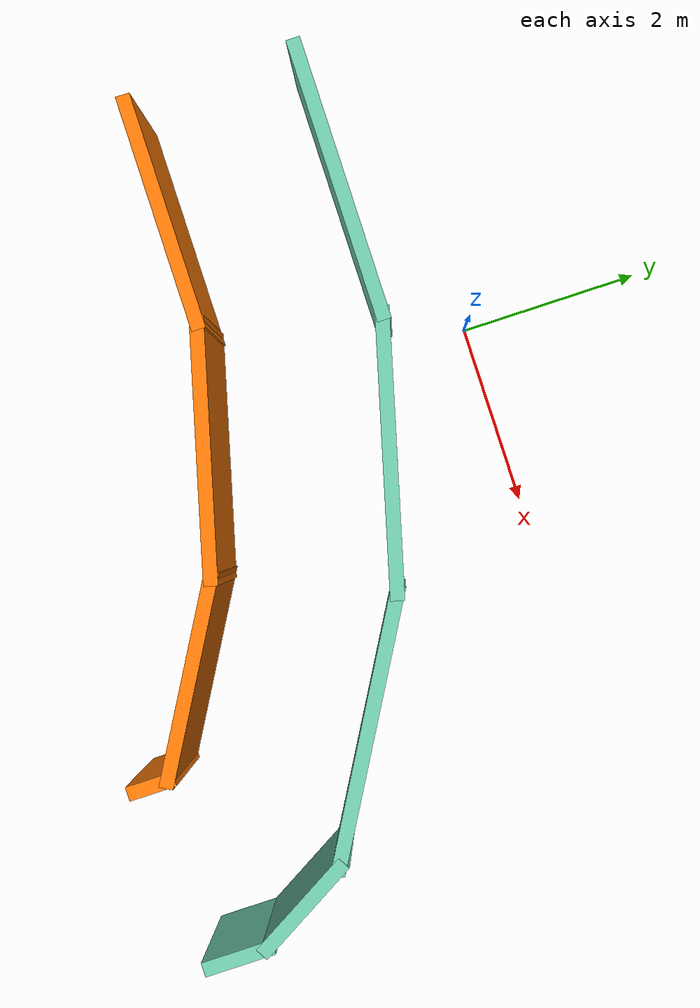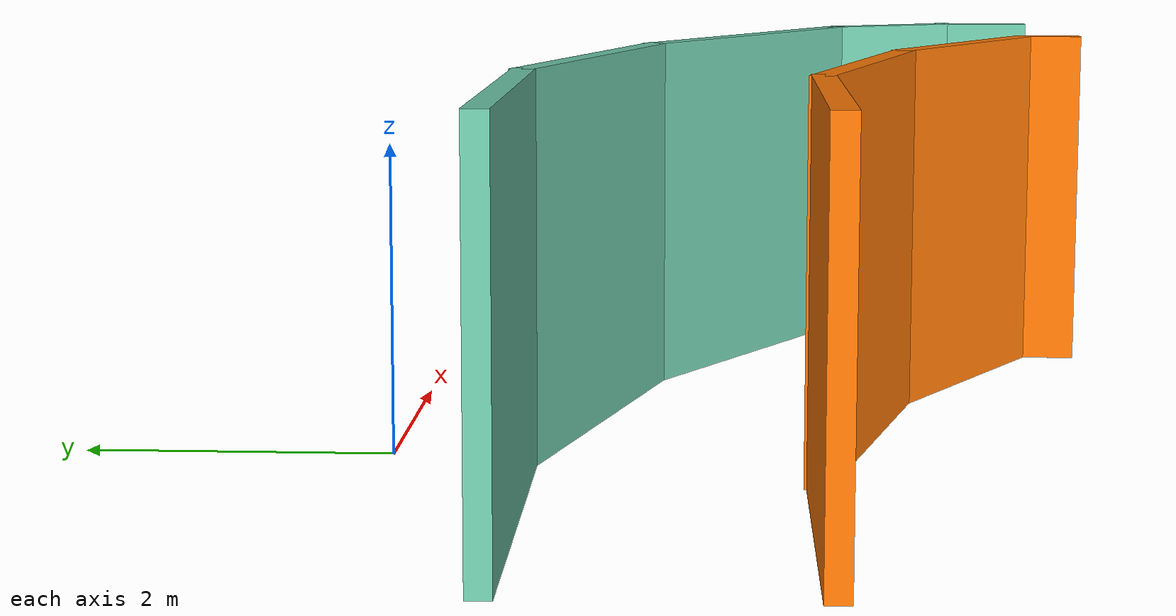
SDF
<?xml version='1.0'?>
<sdf version='1.7'>
  <model name='BigTurnP'>
    <pose>1.21426 -2.41897 0 0 -0 0</pose>
    <link name='Wall_0'>
      <collision name='Wall_0_Collision'>
        <geometry>
          <box>
            <size>3 0.15 2.5</size>
          </box>
        </geometry>
        <pose>0 0 1.25 0 -0 0</pose>
      </collision>
      <visual name='Wall_0_Visual'>
        <pose>0 0 1.25 0 -0 0</pose>
        <geometry>
          <box>
            <size>3 0.15 2.5</size>
          </box>
        </geometry>
        <material>
          <script>
            <uri>file://media/materials/scripts/gazebo.material</uri>
            <name>Gazebo/Grey</name>
          </script>
          <ambient>0.435294 0.796078 0.67451 1</ambient>
        </material>
        <meta>
          <layer>0</layer>
        </meta>
      </visual>
      <pose>-2.89926 1.54896 0 0 -0 0</pose>
    </link>
    <link name='Wall_1'>
      <collision name='Wall_1_Collision'>
        <geometry>
          <box>
            <size>3 0.15 2.5</size>
          </box>
        </geometry>
        <pose>0 0 1.25 0 -0 0</pose>
      </collision>
      <visual name='Wall_1_Visual'>
        <pose>0 0 1.25 0 -0 0</pose>
        <geometry>
          <box>
            <size>3 0.15 2.5</size>
          </box>
        </geometry>
        <material>
          <script>
            <uri>file://media/materials/scripts/gazebo.material</uri>
            <name>Gazebo/Grey</name>
          </script>
          <ambient>0.435294 0.796078 0.67451 1</ambient>
        </material>
        <meta>
          <layer>0</layer>
        </meta>
      </visual>
      <pose>-0.097812 1.18015 0 0 -0 -0.261799</pose>
    </link>
    <link name='Wall_10'>
      <collision name='Wall_10_Collision'>
        <geometry>
          <box>
            <size>1.25 0.15 2.5</size>
          </box>
        </geometry>
        <pose>0 0 1.25 0 -0 0</pose>
      </collision>
      <visual name='Wall_10_Visual'>
        <pose>0 0 1.25 0 -0 0</pose>
        <geometry>
          <box>
            <size>1.25 0.15 2.5</size>
          </box>
        </geometry>
        <material>
          <script>
            <uri>file://media/materials/scripts/gazebo.material</uri>
            <name>Gazebo/Grey</name>
          </script>
          <ambient>0.435294 0.796078 0.67451 1</ambient>
        </material>
        <meta>
          <layer>0</layer>
        </meta>
      </visual>
      <pose>4.0218 -1.08998 0 0 -0 -1.0472</pose>
    </link>
    <link name='Wall_11'>
      <collision name='Wall_11_Collision'>
        <geometry>
          <box>
            <size>0.75 0.15 2.5</size>
          </box>
        </geometry>
        <pose>0 0 1.25 0 -0 0</pose>
      </collision>
      <visual name='Wall_11_Visual'>
        <pose>0 0 1.25 0 -0 0</pose>
        <geometry>
          <box>
            <size>0.75 0.15 2.5</size>
          </box>
        </geometry>
        <material>
          <script>
            <uri>file://media/materials/scripts/gazebo.material</uri>
            <name>Gazebo/Grey</name>
          </script>
          <ambient>0.435294 0.796078 0.67451 1</ambient>
        </material>
        <meta>
          <layer>0</layer>
        </meta>
      </visual>
      <pose>4.2968 -1.8663 0 0 -0 -1.5708</pose>
    </link>
    <link name='Wall_2'>
      <collision name='Wall_2_Collision'>
        <geometry>
          <box>
            <size>3 0.15 2.5</size>
          </box>
        </geometry>
        <pose>0 0 1.25 0 -0 0</pose>
      </collision>
      <visual name='Wall_2_Visual'>
        <pose>0 0 1.25 0 -0 0</pose>
        <geometry>
          <box>
            <size>3 0.15 2.5</size>
          </box>
        </geometry>
        <material>
          <script>
            <uri>file://media/materials/scripts/gazebo.material</uri>
            <name>Gazebo/Grey</name>
          </script>
          <ambient>0.435294 0.796078 0.67451 1</ambient>
        </material>
        <meta>
          <layer>0</layer>
        </meta>
      </visual>
      <pose>2.51272 0.098831 0 0 -0 -0.523599</pose>
    </link>
    <link name='Wall_5'>
      <collision name='Wall_5_Collision'>
        <geometry>
          <box>
            <size>2.5 0.15 2.5</size>
          </box>
        </geometry>
        <pose>0 0 1.25 0 -0 0</pose>
      </collision>
      <visual name='Wall_5_Visual'>
        <pose>0 0 1.25 0 -0 0</pose>
        <geometry>
          <box>
            <size>2.5 0.15 2.5</size>
          </box>
        </geometry>
        <material>
          <script>
            <uri>file://media/materials/scripts/gazebo.material</uri>
            <name>Gazebo/Grey</name>
          </script>
          <ambient>0.996078 0.47451 0.0196078 1</ambient>
        </material>
        <meta>
          <layer>0</layer>
        </meta>
      </visual>
      <pose>-3.13926 -0.271035 0 0 -0 0</pose>
    </link>
    <link name='Wall_6'>
      <collision name='Wall_6_Collision'>
        <geometry>
          <box>
            <size>2.75 0.15 2.5</size>
          </box>
        </geometry>
        <pose>0 0 1.25 0 -0 0</pose>
      </collision>
      <visual name='Wall_6_Visual'>
        <pose>0 0 1.25 0 -0 0</pose>
        <geometry>
          <box>
            <size>2.75 0.15 2.5</size>
          </box>
        </geometry>
        <material>
          <script>
            <uri>file://media/materials/scripts/gazebo.material</uri>
            <name>Gazebo/Grey</name>
          </script>
          <ambient>0.996078 0.47451 0.0196078 1</ambient>
        </material>
        <meta>
          <layer>0</layer>
        </meta>
      </visual>
      <pose>-0.708553 -0.6075 0 0 -0 -0.261799</pose>
    </link>
    <link name='Wall_7'>
      <collision name='Wall_7_Collision'>
        <geometry>
          <box>
            <size>2.25 0.15 2.5</size>
          </box>
        </geometry>
        <pose>0 0 1.25 0 -0 0</pose>
      </collision>
      <visual name='Wall_7_Visual'>
        <pose>0 0 1.25 0 -0 0</pose>
        <geometry>
          <box>
            <size>2.25 0.15 2.5</size>
          </box>
        </geometry>
        <material>
          <script>
            <uri>file://media/materials/scripts/gazebo.material</uri>
            <name>Gazebo/Grey</name>
          </script>
          <ambient>0.996078 0.47451 0.0196078 1</ambient>
        </material>
        <meta>
          <layer>0</layer>
        </meta>
      </visual>
      <pose>1.45648 -1.46897 0 0 -0 -0.523599</pose>
    </link>
    <link name='Wall_8'>
      <collision name='Wall_8_Collision'>
        <geometry>
          <box>
            <size>0.5 0.15 2.5</size>
          </box>
        </geometry>
        <pose>0 0 1.25 0 -0 0</pose>
      </collision>
      <visual name='Wall_8_Visual'>
        <pose>0 0 1.25 0 -0 0</pose>
        <geometry>
          <box>
            <size>0.5 0.15 2.5</size>
          </box>
        </geometry>
        <material>
          <script>
            <uri>file://media/materials/scripts/gazebo.material</uri>
            <name>Gazebo/Grey</name>
          </script>
          <ambient>0.996078 0.47451 0.0196078 1</ambient>
        </material>
        <meta>
          <layer>0</layer>
        </meta>
      </visual>
      <pose>2.3658 -2.16897 0 0 -0 -1.5708</pose>
    </link>
    <static>1</static>
  </model>
</sdf>
